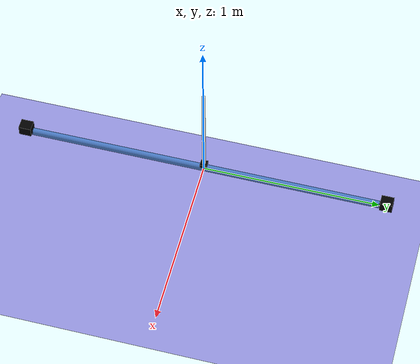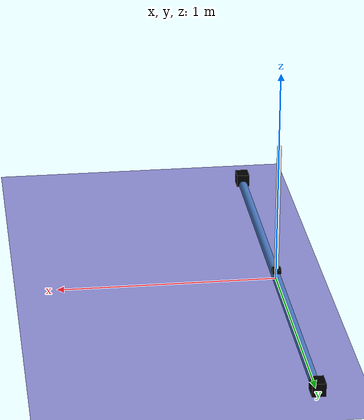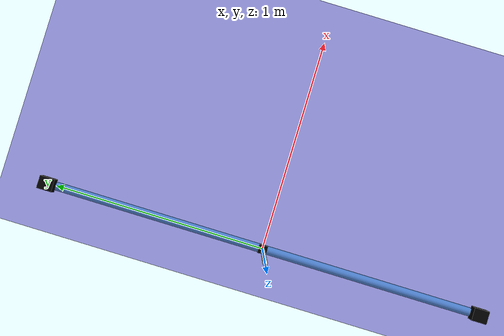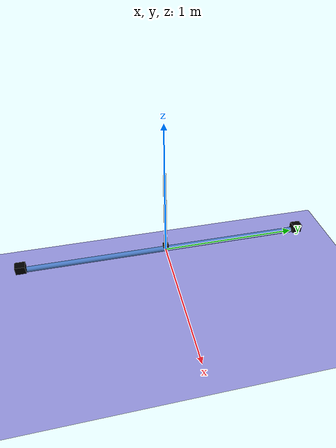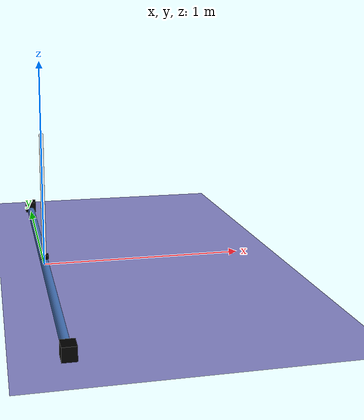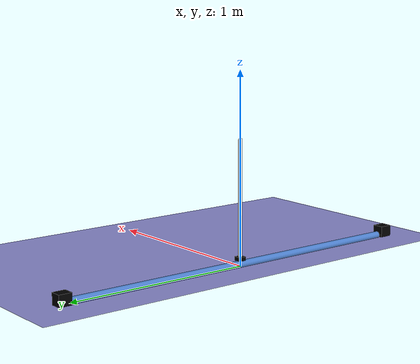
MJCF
<mujoco>
    <asset>
        <texture name="grid" type="2d" builtin="checker" width="512" height="512" rgb1=".9 .9 .9" rgb2=".3 .3 .9"/>
        <material name="grid" texture="grid" texrepeat="1 1" texuniform="true" reflectance=".2"/>
    </asset>

    <worldbody>

        <camera name="default_view" pos=".3 .5 .3" mode="fixed" />

        <light diffuse="1 1 1" pos="0 0 3" dir="0 0 -1" />
        <geom type="plane" size="2 2 .1" material="grid" />

        <body name="base" pos="0 0 0.01">
            <geom type="cylinder" size="0.02 1" euler="90 0 0" rgba=".3 .5 .8 1" />

            <body name="car" pos="0 0 0.031">
                <joint name="car_joint" type="slide" axis="0 1 0" limited="true" range="-1 1" damping="0.0001"  />
                <geom type="box" size=".02 .02 .01" mass=".5" rgba="0 0 0 1" />

                <body name="pend" pos="0 0 0.01">
                    <joint name="pend_joint" axis="1 0 0" limited="true" range="-10 10"/>
                    <inertial pos="0 0 .3" diaginertia="0.006 0.006 0.006" mass="0.2"/>
                    <geom type="capsule" fromto="0 0 0 0 0 0.6" size="0.01" rgba=".9 .9 .9 1" />
                </body>
            </body>
        </body>

        <body name="fixed_end1" pos="0 1.04 .03">
            <geom type="box" size=".03 .035 .03" rgba="0 0 0 1" />
        </body>

        <body name="fixed_end2" pos="0 -1.04 .03">
            <geom type="box" size=".03 .035 .03" rgba="0 0 0 1" />
        </body>
    </worldbody>

    <actuator>
        <motor gear="8" joint="car_joint" name="motor" ctrlrange="-1 1"/>
        <damper joint="car_joint" name="car_damper" kv="10" ctrlrange="0 .5" />
        <damper joint="pend_joint" name="pendulum_damper" kv="1" ctrlrange="0 .5" />
    </actuator>

    <sensor>
        <jointpos name="theta" joint="pend_joint"/>
        <jointvel name="theta_dot" joint="pend_joint"/>
    </sensor>
</mujoco>
